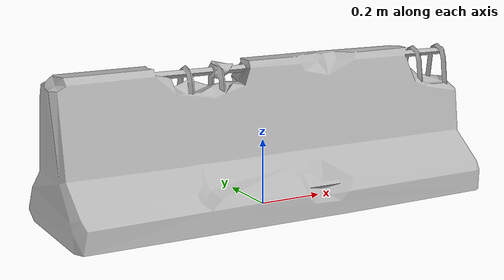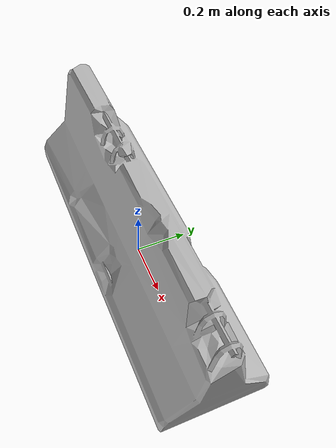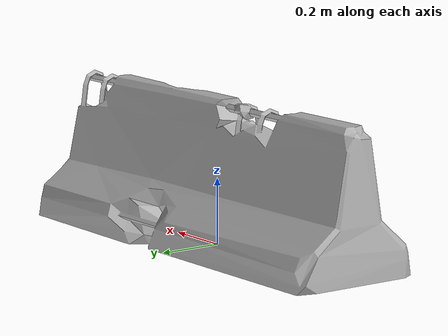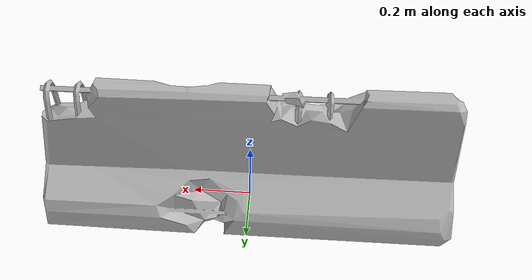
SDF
<?xml version="1.0" ?>
<sdf version="1.4">
	<model name="concrete_roadblock">
		<static>true</static>
		<link name="link">
			<pose>0 0 0 1.5708 0 0</pose>
			<collision name="collision">
				<geometry>
					<mesh>
						<uri>model://concrete_roadblock/mesh/concrete_roadblock.dae</uri>
						<scale>0.175 0.175 0.175</scale>
					</mesh>
				</geometry>
				<surface>
					<bounce>
						<restitution_coefficient>0.01</restitution_coefficient>
						<threshold>5.0</threshold>
					</bounce>
					<friction>
						<ode>
							<mu>10</mu>
							<mu2>10</mu2>
						</ode>
					</friction>
					<contact>
						<ode>
							<soft_cfm>0.001</soft_cfm>
							<kp>100000.0</kp>
							<kd>1000.0</kd>
						</ode>
					</contact>
				</surface>
			</collision>
			<visual name="visual">
				<geometry>
					<mesh>
						<uri>model://concrete_roadblock/mesh/concrete_roadblock.dae</uri>
						<scale>0.175 0.175 0.175</scale>
					</mesh>
				</geometry>
			</visual>
		</link>
	</model>
</sdf>
